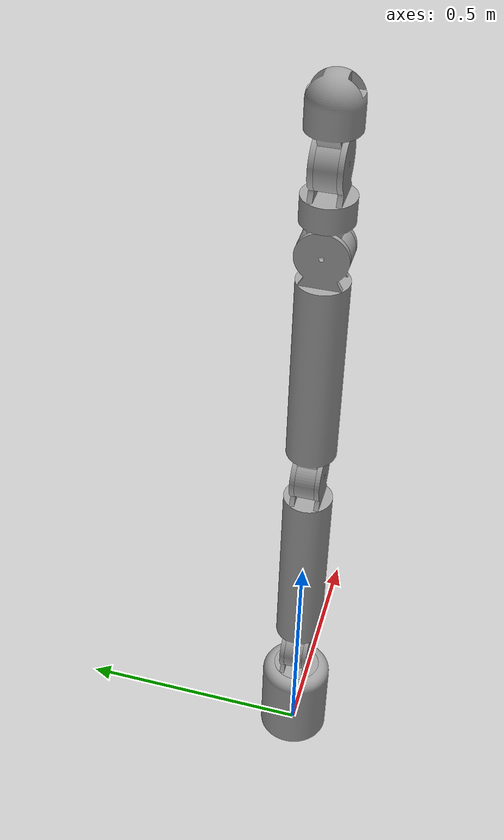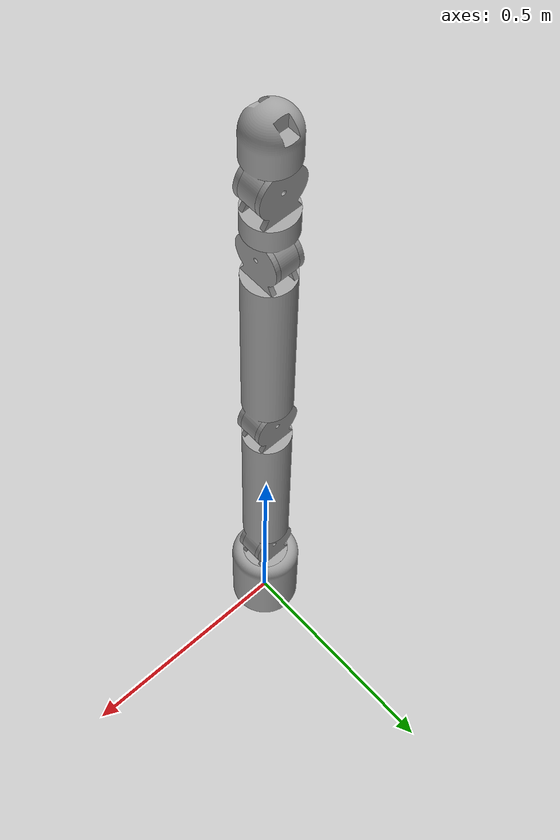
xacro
<?xml version="1.0" ?>
<robot name="robotarm" xmlns:xacro="http://www.ros.org/wiki/xacro">

  <xacro:include filename="$(find robotarm_description)/urdf/materials.xacro" />
  <xacro:include filename="$(find robotarm_description)/urdf/robotarm.gazebo" />

  <link name="world"/>
  <joint name="world_to_base_link=" type="fixed">
     <parent link="world"/>
     <child link="base_link"/>
  </joint>

  <link name="base_link">
    <inertial>
      <origin xyz="3.211366342053439e-17 -6.749204728423484e-16 0.09710635778016181" rpy="0 0 0"/>
      <mass value="0.954218401189586"/>
      <inertia ixx="0.0" iyy="0.0" izz="0.0" ixy="0.0" iyz="0.0" ixz="0.0"/>
    </inertial>
    <visual>
      <origin xyz="0 0 0" rpy="0 0 0"/>
      <geometry>
        <mesh filename="package://robotarm_description/meshes/base_link.stl" scale="0.001 0.001 0.001"/>
      </geometry>
      <material name="steel_satin"/>
    </visual>
    <collision>
      <origin xyz="0 0 0" rpy="0 0 0"/>
      <geometry>
        <mesh filename="package://robotarm_description/meshes/base_link.stl" scale="0.001 0.001 0.001"/>
      </geometry>
    </collision>
  </link>

  <link name="arm_v2_1">
    <inertial>
      <origin xyz="2.86641694438031e-12 7.1651962032025505e-12 0.11542328726383948" rpy="0 0 0"/>
      <mass value="0.701474550782814"/>
      <inertia ixx="0.0" iyy="0.0" izz="0.0" ixy="-0.0" iyz="0.0" ixz="0.0"/>
    </inertial>
    <visual>
      <origin xyz="0.0 -0.0 -0.0" rpy="0 0 0"/>
      <geometry>
        <mesh filename="package://robotarm_description/meshes/arm_v2_1.stl" scale="0.001 0.001 0.001"/>
      </geometry>
      <material name="steel_satin"/>
    </visual>
    <collision>
      <origin xyz="0.0 -0.0 -0.0" rpy="0 0 0"/>
      <geometry>
        <mesh filename="package://robotarm_description/meshes/arm_v2_1.stl" scale="0.001 0.001 0.001"/>
      </geometry>
    </collision>
  </link>

  <link name="arm2_v4_1">
    <inertial>
      <origin xyz="-4.1454899601944815e-09 -0.019999996010484102 0.24789197465992951" rpy="0 0 0"/>
      <mass value="0.773680395029224"/>
      <inertia ixx="0.0" iyy="0.0" izz="0.0" ixy="0.0" iyz="0.0" ixz="0.0"/>
    </inertial>
    <visual>
      <origin xyz="-0.0 -0.02 -0.78" rpy="0 0 0"/>
      <geometry>
        <mesh filename="package://robotarm_description/meshes/arm2_v4_1.stl" scale="0.001 0.001 0.001"/>
      </geometry>
      <material name="steel_satin"/>
    </visual>
    <collision>
      <origin xyz="-0.0 -0.02 -0.78" rpy="0 0 0"/>
      <geometry>
        <mesh filename="package://robotarm_description/meshes/arm2_v4_1.stl" scale="0.001 0.001 0.001"/>
      </geometry>
    </collision>
  </link>

  <link name="arm1_v7_3">
    <inertial>
      <origin xyz="-1.6689085668986083e-11 -0.019999999984820285 0.24789191274178002" rpy="0 0 0"/>
      <mass value="0.773672481443835"/>
      <inertia ixx="0.0" iyy="0.0" izz="0.0" ixy="0.0" iyz="0.0" ixz="0.0"/>
    </inertial>
    <visual>
      <origin xyz="0.0 -0.02 -0.26" rpy="0 0 0"/>
      <geometry>
        <mesh filename="package://robotarm_description/meshes/arm1_v7_3.stl" scale="0.001 0.001 0.001"/>
      </geometry>
      <material name="steel_satin"/>
    </visual>
    <collision>
      <origin xyz="0.0 -0.02 -0.26" rpy="0 0 0"/>
      <geometry>
        <mesh filename="package://robotarm_description/meshes/arm1_v7_3.stl" scale="0.001 0.001 0.001"/>
      </geometry>
    </collision>
  </link>

  <link name="end_joint_v4_2">
    <inertial>
      <origin xyz="-6.05770520933277e-09 -0.019999974177698512 0.06669706204392978" rpy="0 0 0"/>
      <mass value="0.634057744620065"/>
      <inertia ixx="0.0" iyy="0.0" izz="0.0" ixy="0.0" iyz="0.0" ixz="0.0"/>
    </inertial>
    <visual>
      <origin xyz="0.0 -0.02 -1.47" rpy="0 0 0"/>
      <geometry>
        <mesh filename="package://robotarm_description/meshes/end_joint_v4_2.stl" scale="0.001 0.001 0.001"/>
      </geometry>
      <material name="steel_satin"/>
    </visual>
    <collision>
      <origin xyz="0.0 -0.02 -1.47" rpy="0 0 0"/>
      <geometry>
        <mesh filename="package://robotarm_description/meshes/end_joint_v4_2.stl" scale="0.001 0.001 0.001"/>
      </geometry>
    </collision>
  </link>

  <link name="double_joint_v4_2">
    <inertial>
      <origin xyz="0.019999988316214277 -1.4664186026303041e-08 0.06991739176071521" rpy="0 0 0"/>
      <mass value="0.194863507637308"/>
      <inertia ixx="0.0" iyy="0.0" izz="0.0" ixy="0.0" iyz="0.0" ixz="0.0"/>
    </inertial>
    <visual>
      <origin xyz="0.02 -0.0 -1.3" rpy="0 0 0"/>
      <geometry>
        <mesh filename="package://robotarm_description/meshes/double_joint_v4_2.stl" scale="0.001 0.001 0.001"/>
      </geometry>
      <material name="steel_satin"/>
    </visual>
    <collision>
      <origin xyz="0.02 -0.0 -1.3" rpy="0 0 0"/>
      <geometry>
        <mesh filename="package://robotarm_description/meshes/double_joint_v4_2.stl" scale="0.001 0.001 0.001"/>
      </geometry>
    </collision>
  </link>

  <joint name="Slider" type="prismatic">
    <origin xyz="0.0 0.0 0.0" rpy="0 0 0"/>
    <parent link="base_link"/>
    <child link="arm_v2_1"/>
    <axis xyz="0.0 -0.0 1.0"/>
    <limit upper="0.2" lower="0.0" effort="100" velocity="100"/>
  </joint>

  <transmission name="slider_tran">
    <type>transmission_interface/SimpleTransmission</type>
    <joint name="Slider">
      <hardwareInterface>hardware_interface/PositionJointInterface</hardwareInterface>
    </joint>
    <actuator name="slider_motor">
      <hardwareInterface>hardware_interface/PositionJointInterface</hardwareInterface>
      <mechanicalReduction>1</mechanicalReduction>
    </actuator>
  </transmission>

  <joint name="Rev2" type="revolute">
    <origin xyz="0.0 0.0 0.52" rpy="0 0 0"/>
    <parent link="arm1_v7_3"/>
    <child link="arm2_v4_1"/>
    <axis xyz="-0.0 1.0 -0.0"/>
    <limit upper="1.570796" lower="-1.570796" effort="100" velocity="100"/>
  </joint>

  <transmission name="rev2_tran">
    <type>transmission_interface/SimpleTransmission</type>
    <joint name="Rev2">
      <hardwareInterface>hardware_interface/PositionJointInterface</hardwareInterface>
    </joint>
    <actuator name="rev2_motor">
      <hardwareInterface>hardware_interface/PositionJointInterface</hardwareInterface>
      <mechanicalReduction>1</mechanicalReduction>
    </actuator>
  </transmission>

  <joint name="Rev1" type="revolute">
    <origin xyz="0.0 0.02 0.26" rpy="0 0 0"/>
    <parent link="arm_v2_1"/>
    <child link="arm1_v7_3"/>
    <axis xyz="-0.0 1.0 -0.0"/>
    <limit upper="1.570796" lower="-1.570796" effort="100" velocity="100"/>
  </joint>

  <transmission name="rev1_tran">
    <type>transmission_interface/SimpleTransmission</type>
    <joint name="Rev1">
      <hardwareInterface>hardware_interface/PositionJointInterface</hardwareInterface>
    </joint>
    <actuator name="rev1_motor">
      <hardwareInterface>hardware_interface/PositionJointInterface</hardwareInterface>
      <mechanicalReduction>1</mechanicalReduction>
    </actuator>
  </transmission>

  <joint name="Rev4" type="revolute">
    <origin xyz="0.02 0.02 0.17" rpy="0 0 0"/>
    <parent link="double_joint_v4_2"/>
    <child link="end_joint_v4_2"/>
    <axis xyz="-0.0 1.0 -0.0"/>
    <limit upper="1.570796" lower="-1.570796" effort="100" velocity="100"/>
  </joint>

  <transmission name="rev4_tran">
    <type>transmission_interface/SimpleTransmission</type>
    <joint name="Rev4">
      <hardwareInterface>hardware_interface/PositionJointInterface</hardwareInterface>
    </joint>
    <actuator name="rev4_motor">
      <hardwareInterface>hardware_interface/PositionJointInterface</hardwareInterface>
      <mechanicalReduction>1</mechanicalReduction>
    </actuator>
  </transmission>

  <joint name="Rev3" type="revolute">
    <origin xyz="-0.02 -0.02 0.52" rpy="0 0 0"/>
    <parent link="arm2_v4_1"/>
    <child link="double_joint_v4_2"/>
    <axis xyz="-1.0 0.0 -0.0"/>
    <limit upper="1.570796" lower="-1.570796" effort="100" velocity="100"/>
  </joint>

  <transmission name="rev3_tran">
    <type>transmission_interface/SimpleTransmission</type>
    <joint name="Rev3">
      <hardwareInterface>hardware_interface/PositionJointInterface</hardwareInterface>
    </joint>
    <actuator name="rev3_motor">
      <hardwareInterface>hardware_interface/PositionJointInterface</hardwareInterface>
      <mechanicalReduction>1</mechanicalReduction>
    </actuator>
  </transmission>

</robot>

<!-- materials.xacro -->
<robot name="robotarm" xmlns:xacro="http://www.ros.org/wiki/xacro" >

<material name="silver_default">
  <color rgba="0.700 0.700 0.700 1.000"/>
</material>
<material name="steel_satin">
  <color rgba="0.6274509803921569 0.6274509803921569 0.6274509803921569 1.0"/>
</material>

</robot>

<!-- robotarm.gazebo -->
<robot name="robotarm" xmlns:xacro="http://www.ros.org/wiki/xacro" >

<xacro:property name="body_color" value="Gazebo/Silver" />

<gazebo>
  <plugin name="gazebo_ros_control" filename="libgazebo_ros_control.so">
      <robotNamespace>robotarm</robotNamespace>
      <controlPeriod>0.001</controlPeriod>
      <robotSimType>gazebo_ros_control/DefaultRobotHWSim</robotSimType>
  </plugin>
</gazebo>

<gazebo reference="base_link">
  <material>${body_color}</material>
  <mu1>0.2</mu1>
  <mu2>0.2</mu2>
  <selfCollide>true</selfCollide>
  <gravity>true</gravity>
</gazebo>

<gazebo reference="arm_v2_1">
  <material>${body_color}</material>
  <mu1>0.2</mu1>
  <mu2>0.2</mu2>
  <selfCollide>true</selfCollide>
</gazebo>

<gazebo reference="arm2_v4_1">
  <material>${body_color}</material>
  <mu1>0.2</mu1>
  <mu2>0.2</mu2>
  <selfCollide>true</selfCollide>
</gazebo>

<gazebo reference="arm1_v7_3">
  <material>${body_color}</material>
  <mu1>0.2</mu1>
  <mu2>0.2</mu2>
  <selfCollide>true</selfCollide>
</gazebo>

<gazebo reference="end_joint_v4_2">
  <material>${body_color}</material>
  <mu1>0.2</mu1>
  <mu2>0.2</mu2>
  <selfCollide>true</selfCollide>
</gazebo>

<gazebo reference="double_joint_v4_2">
  <material>${body_color}</material>
  <mu1>0.2</mu1>
  <mu2>0.2</mu2>
  <selfCollide>true</selfCollide>
</gazebo>

</robot>
